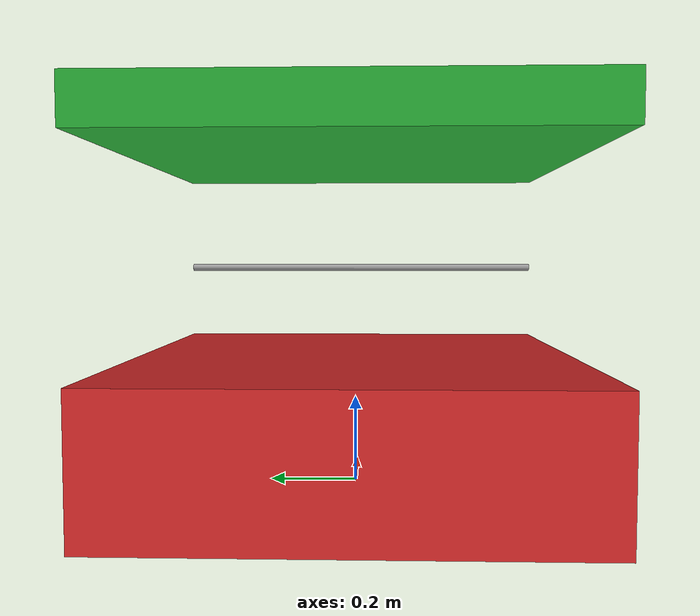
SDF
<?xml version='1.0'?>
<sdf version='1.3'>
    <model name="Joint planes">

    <pose>0 0 0 0 0 0</pose>

    <link name="link">

        <self_collide> true </self_collide>

        <pose> 0 0 0.15 0 0 0 </pose>

        <collision name="collision">

            <geometry>
                <box>
                    <size> 1 1 0.3 </size>
                </box>
            </geometry>

        </collision>

        <visual name="visual">

            <geometry>
                <box>
                    <size> 1 1 0.3 </size>
                </box>
            </geometry>

            <material>
                <script>
                    <uri>file://media/materials/scripts/gazebo.material</uri>
                    <name>Gazebo/Red</name>
                </script>
            </material>
        </visual>

    </link>

    <link name="l1_l2">

        <pose> 0.5 0 0.5 1.5707963267948966 0 0 </pose>

        <collision name="collision">

            <geometry>
                <cylinder>
                    <radius> 0.01 </radius>
                    <length> 1.0 </length>
                </cylinder>
            </geometry>

        </collision>

        <visual name="visual">
            <geometry>
                <cylinder>
                    <radius> 0.01 </radius>
                    <length> 1.0 </length>
                </cylinder>
            </geometry>

            <material>
                <script>
                    <uri>file://media/materials/scripts/gazebo.material</uri>
                    <name>Gazebo/Grey</name>
                </script>
            </material>
        </visual>

    </link>

    <link name="link2">

        <self_collide> true </self_collide>

        <pose> 0 0 0.8 0 0 0 </pose>

        <collision name="collisionx">
            <geometry>
                <box>
                    <size> 1 1 0.1 </size>
                </box>
            </geometry>
        </collision>

        <visual name="visualx">
            <geometry>
                <box>
                    <size> 1 1 0.1 </size>
                </box>
            </geometry>
            <material>
                <script>
                    <uri>file://media/materials/scripts/gazebo.material</uri>
                    <name>Gazebo/Green</name>
                </script>
            </material>
        </visual>
    </link>

    <joint type="revolute" name="two_planes">
        <parent> link </parent>
        <child> l1_l2 </child>
        <axis>
            <xyz> 0 1 0 </xyz>
            <limit>
                <lower> 0 </lower>
                <upper> 0 </upper>
            </limit>
        </axis>

        <physics>
            <ode>
                <limit>
                    <cfm>0.0</cfm>
                    <erp>0.9</erp>
                </limit>
            </ode>
        </physics>
    </joint>

    <joint type="revolute" name="two_planes2">
        <parent> link2 </parent>
        <child> l1_l2 </child>
        <axis>
            <xyz> 0 1 0 </xyz>
        </axis>

        <physics>
            <ode>
                <limit>
                    <cfm>0.0</cfm>
                    <erp>0.9</erp>
                </limit>
            </ode>
        </physics>
    </joint>

    </model>
</sdf>
